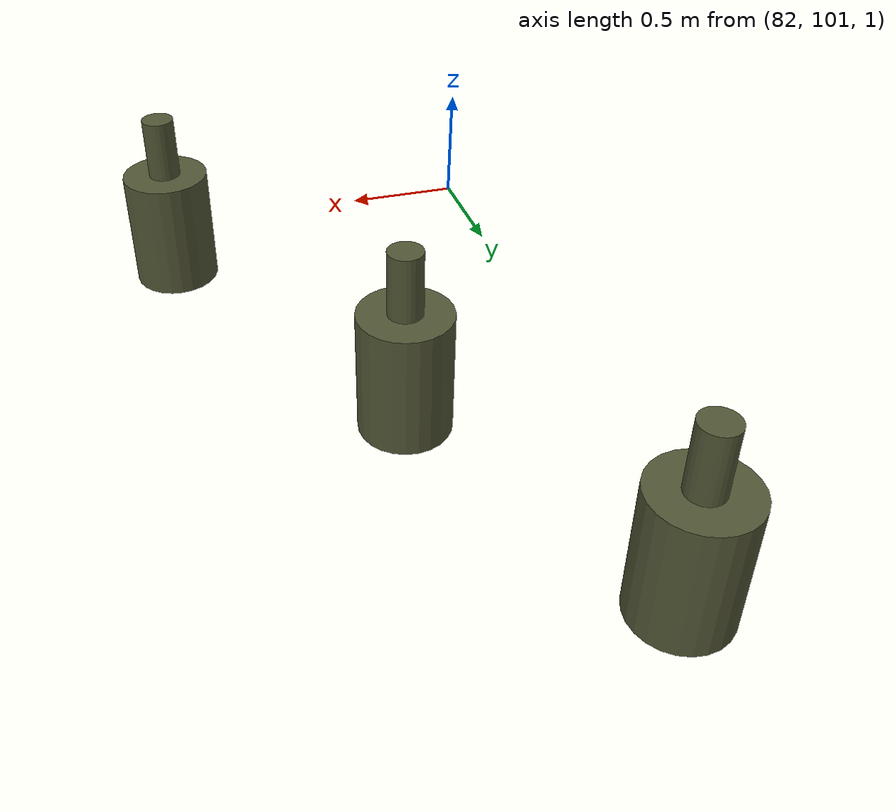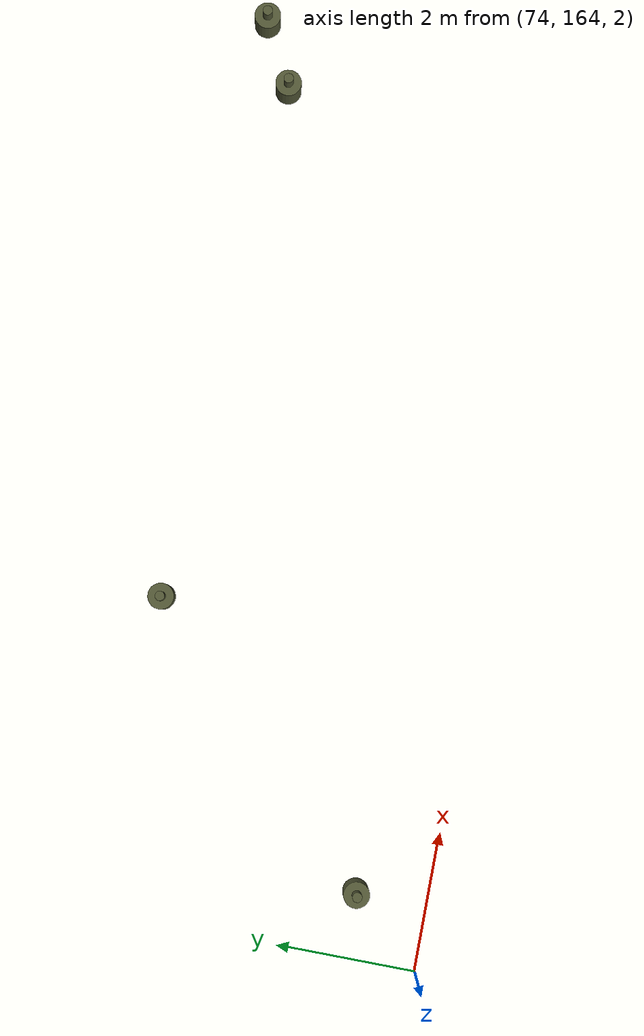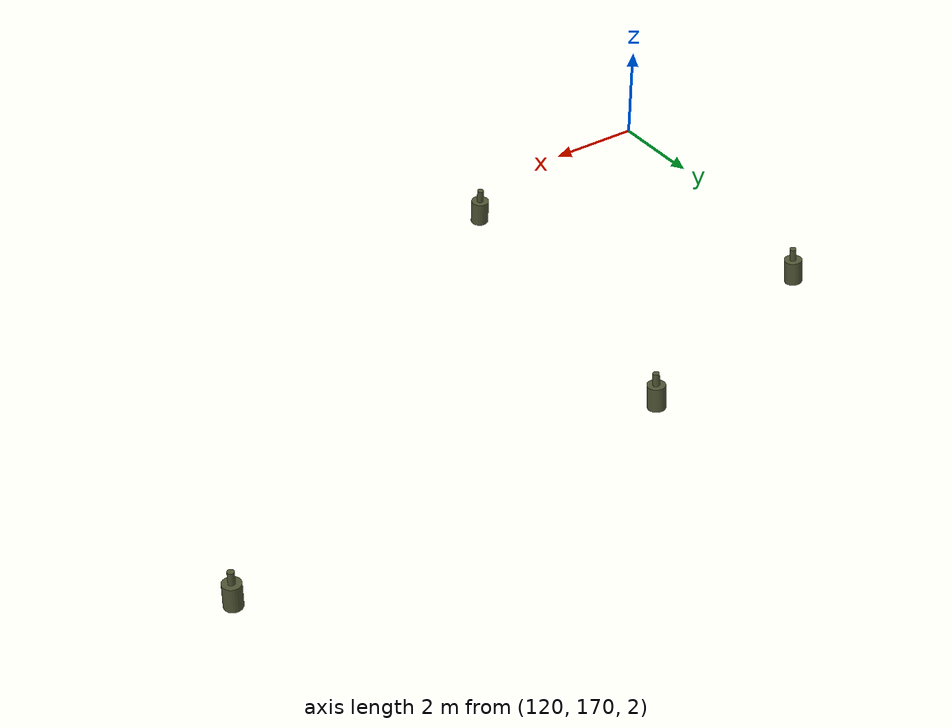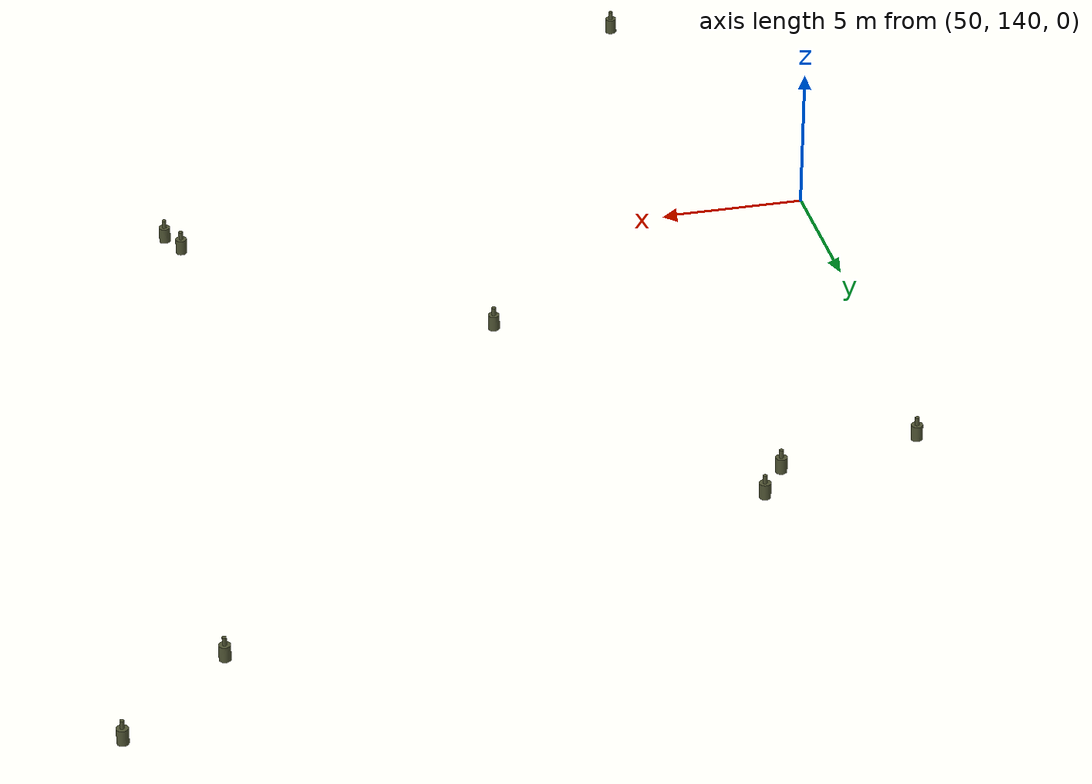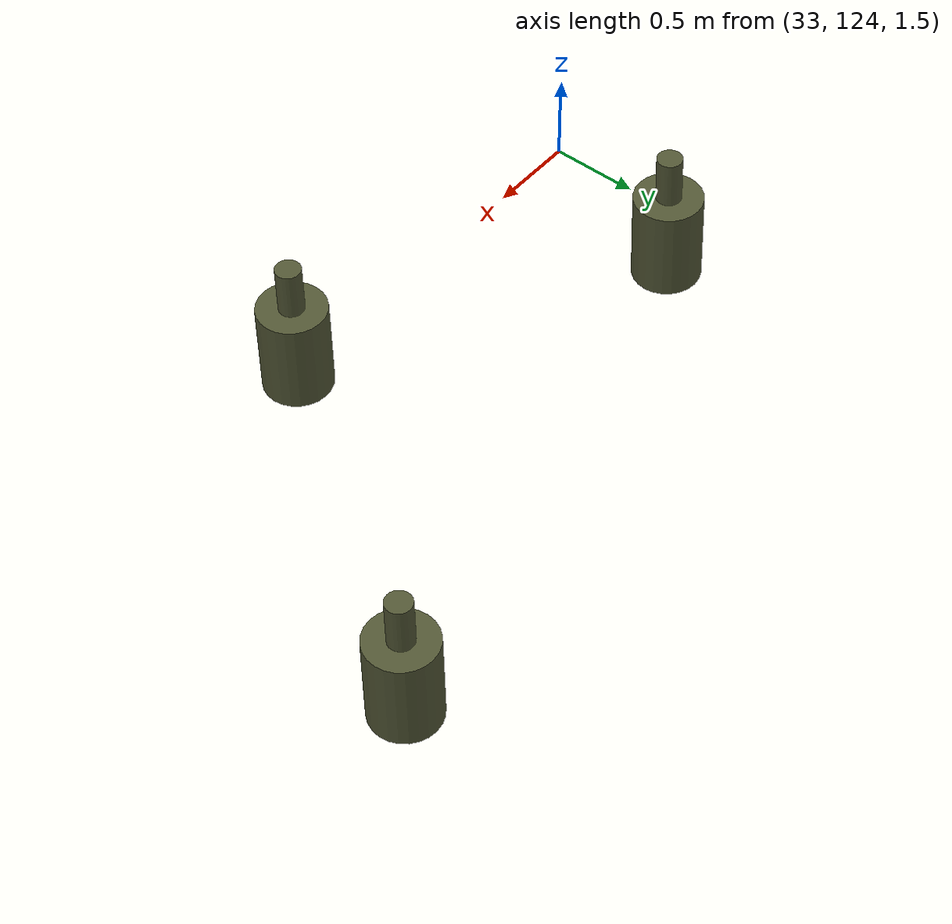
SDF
<sdf version="1.7">
 <world name="default">
  <light name="sun" type="directional">
   <pose>0 0 10 0 -0 0</pose>
   <diffuse>0.8 0.8 0.8 1</diffuse>
   <specular>0.2 0.2 0.2 1</specular>
   <attenuation>
    <range>1000</range>
    <constant>0.9</constant>
    <linear>0.01</linear>
    <quadratic>0.001</quadratic>
   </attenuation>
   <direction>-0.5 0.1 -0.9</direction>
   <spot><inner_angle>0</inner_angle><outer_angle>0</outer_angle><falloff>0</falloff></spot>
  </light>
  <gravity>0 0 -9.8</gravity>
  <magnetic_field>6e-06 2.3e-05 -4.2e-05</magnetic_field>
  <atmosphere type="adiabatic"/>
  <physics type="ode">
   <max_step_size>0.001</max_step_size>
   <real_time_factor>1</real_time_factor>
   <real_time_update_rate>1000</real_time_update_rate>
  </physics>
  <scene><ambient>0.4 0.4 0.4 1</ambient><background>0.7 0.7 0.7 1</background><shadows>0</shadows></scene>
  <spherical_coordinates>
   <surface_model>EARTH_WGS84</surface_model>
   <latitude_deg>46.339159</latitude_deg>
   <longitude_deg>3.433923</longitude_deg>
   <elevation>279.18</elevation>
   <heading_deg>180</heading_deg>
  </spherical_coordinates>
  <model name="obstacle_iso18497">
   <pose>142.732 83.0975 -0.295742 0.011009 0.021463 0.000145</pose>
   <static>1</static>
   <link name="link">
    <visual name="body">
     <pose>0 0 0.265 0 -0 0</pose>
     <geometry><cylinder><radius>0.19</radius><length>0.53</length></cylinder></geometry>
     <material><ambient>0.322 0.341 0.208 1</ambient><diffuse>0.322 0.341 0.208 1</diffuse></material>
    </visual>
    <visual name="head">
     <pose>0 0 0.665 0 -0 0</pose>
     <geometry><cylinder><radius>0.07</radius><length>0.27</length></cylinder></geometry>
     <material><ambient>0.322 0.341 0.208 1</ambient><diffuse>0.322 0.341 0.208 1</diffuse></material>
    </visual>
    <collision name="body_col">
     <pose>0 0 0.265 0 -0 0</pose>
     <geometry><cylinder><radius>0.19</radius><length>0.53</length></cylinder></geometry>
     <surface><contact><collide_without_contact>0</collide_without_contact></contact></surface>
    </collision>
    <collision name="head_col">
     <pose>0 0 0.665 0 -0 0</pose>
     <geometry><cylinder><radius>0.07</radius><length>0.27</length></cylinder></geometry>
     <surface><contact><collide_without_contact>0</collide_without_contact></contact></surface>
    </collision>
    <inertial>
     <mass>40</mass>
     <inertia><ixx>1</ixx><ixy>0</ixy><ixz>0</ixz><iyy>1</iyy><iyz>0</iyz><izz>1</izz></inertia>
    </inertial>
   </link>
  </model>
  <model name="obstacle_iso18497_clone_clone">
   <pose>125.971 74.0657 -0.002322 0.001528 0.043881 0.001737</pose>
   <static>1</static>
   <link name="link">
    <visual name="body">
     <pose>0 0 0.265 0 -0 0</pose>
     <geometry><cylinder><radius>0.19</radius><length>0.53</length></cylinder></geometry>
     <material><ambient>0.322 0.341 0.208 1</ambient><diffuse>0.322 0.341 0.208 1</diffuse></material>
    </visual>
    <visual name="head">
     <pose>0 0 0.665 0 -0 0</pose>
     <geometry><cylinder><radius>0.07</radius><length>0.27</length></cylinder></geometry>
     <material><ambient>0.322 0.341 0.208 1</ambient><diffuse>0.322 0.341 0.208 1</diffuse></material>
    </visual>
    <collision name="body_col">
     <pose>0 0 0.265 0 -0 0</pose>
     <geometry><cylinder><radius>0.19</radius><length>0.53</length></cylinder></geometry>
     <surface><contact><collide_without_contact>0</collide_without_contact></contact></surface>
    </collision>
    <collision name="head_col">
     <pose>0 0 0.665 0 -0 0</pose>
     <geometry><cylinder><radius>0.07</radius><length>0.27</length></cylinder></geometry>
     <surface><contact><collide_without_contact>0</collide_without_contact></contact></surface>
    </collision>
    <inertial>
     <mass>40</mass>
     <inertia><ixx>1</ixx><ixy>0</ixy><ixz>0</ixz><iyy>1</iyy><iyz>0</iyz><izz>1</izz></inertia>
    </inertial>
   </link>
  </model>
  <model name="obstacle_iso18497_clone_clone_0">
   <pose>115.286 96.2675 0.237765 0.012519 0.014392 6.7e-05</pose>
   <static>1</static>
   <link name="link">
    <visual name="body">
     <pose>0 0 0.265 0 -0 0</pose>
     <geometry><cylinder><radius>0.19</radius><length>0.53</length></cylinder></geometry>
     <material><ambient>0.322 0.341 0.208 1</ambient><diffuse>0.322 0.341 0.208 1</diffuse></material>
    </visual>
    <visual name="head">
     <pose>0 0 0.665 0 -0 0</pose>
     <geometry><cylinder><radius>0.07</radius><length>0.27</length></cylinder></geometry>
     <material><ambient>0.322 0.341 0.208 1</ambient><diffuse>0.322 0.341 0.208 1</diffuse></material>
    </visual>
    <collision name="body_col">
     <pose>0 0 0.265 0 -0 0</pose>
     <geometry><cylinder><radius>0.19</radius><length>0.53</length></cylinder></geometry>
     <surface><contact><collide_without_contact>0</collide_without_contact></contact></surface>
    </collision>
    <collision name="head_col">
     <pose>0 0 0.665 0 -0 0</pose>
     <geometry><cylinder><radius>0.07</radius><length>0.27</length></cylinder></geometry>
     <surface><contact><collide_without_contact>0</collide_without_contact></contact></surface>
    </collision>
    <inertial>
     <mass>40</mass>
     <inertia><ixx>1</ixx><ixy>0</ixy><ixz>0</ixz><iyy>1</iyy><iyz>0</iyz><izz>1</izz></inertia>
    </inertial>
   </link>
  </model>
  <model name="obstacle_iso18497_clone_clone_0_clone">
   <pose>111.009 99.3502 0.400379 0.012475 0.014392 9.5e-05</pose>
   <static>1</static>
   <link name="link">
    <visual name="body">
     <pose>0 0 0.265 0 -0 0</pose>
     <geometry><cylinder><radius>0.19</radius><length>0.53</length></cylinder></geometry>
     <material><ambient>0.322 0.341 0.208 1</ambient><diffuse>0.322 0.341 0.208 1</diffuse></material>
    </visual>
    <visual name="head">
     <pose>0 0 0.665 0 -0 0</pose>
     <geometry><cylinder><radius>0.07</radius><length>0.27</length></cylinder></geometry>
     <material><ambient>0.322 0.341 0.208 1</ambient><diffuse>0.322 0.341 0.208 1</diffuse></material>
    </visual>
    <collision name="body_col">
     <pose>0 0 0.265 0 -0 0</pose>
     <geometry><cylinder><radius>0.19</radius><length>0.53</length></cylinder></geometry>
     <surface><contact><collide_without_contact>0</collide_without_contact></contact></surface>
    </collision>
    <collision name="head_col">
     <pose>0 0 0.665 0 -0 0</pose>
     <geometry><cylinder><radius>0.07</radius><length>0.27</length></cylinder></geometry>
     <surface><contact><collide_without_contact>0</collide_without_contact></contact></surface>
    </collision>
    <inertial>
     <mass>40</mass>
     <inertia><ixx>1</ixx><ixy>0</ixy><ixz>0</ixz><iyy>1</iyy><iyz>0</iyz><izz>1</izz></inertia>
    </inertial>
   </link>
  </model>
  <model name="obstacle_iso18497_clone_clone_clone">
   <pose>115.411 72.8431 0.004084 0.012492 0.014394 0.000324</pose>
   <static>1</static>
   <link name="link">
    <visual name="body">
     <pose>0 0 0.265 0 -0 0</pose>
     <geometry><cylinder><radius>0.19</radius><length>0.53</length></cylinder></geometry>
     <material><ambient>0.322 0.341 0.208 1</ambient><diffuse>0.322 0.341 0.208 1</diffuse></material>
    </visual>
    <visual name="head">
     <pose>0 0 0.665 0 -0 0</pose>
     <geometry><cylinder><radius>0.07</radius><length>0.27</length></cylinder></geometry>
     <material><ambient>0.322 0.341 0.208 1</ambient><diffuse>0.322 0.341 0.208 1</diffuse></material>
    </visual>
    <collision name="body_col">
     <pose>0 0 0.265 0 -0 0</pose>
     <geometry><cylinder><radius>0.19</radius><length>0.53</length></cylinder></geometry>
     <surface><contact><collide_without_contact>0</collide_without_contact></contact></surface>
    </collision>
    <collision name="head_col">
     <pose>0 0 0.665 0 -0 0</pose>
     <geometry><cylinder><radius>0.07</radius><length>0.27</length></cylinder></geometry>
     <surface><contact><collide_without_contact>0</collide_without_contact></contact></surface>
    </collision>
    <inertial>
     <mass>40</mass>
     <inertia><ixx>1</ixx><ixy>0</ixy><ixz>0</ixz><iyy>1</iyy><iyz>0</iyz><izz>1</izz></inertia>
    </inertial>
   </link>
  </model>
  <audio><device>default</device></audio>
  <model name="obstacle_iso18497_1">
   <pose>94.2655 81.9016 0.445781 0.01251 0.014408 9.3e-05</pose>
   <static>1</static>
   <link name="link">
    <visual name="body">
     <pose>0 0 0.265 0 -0 0</pose>
     <geometry><cylinder><radius>0.19</radius><length>0.53</length></cylinder></geometry>
     <material><ambient>0.322 0.341 0.208 1</ambient><diffuse>0.322 0.341 0.208 1</diffuse></material>
    </visual>
    <visual name="head">
     <pose>0 0 0.665 0 -0 0</pose>
     <geometry><cylinder><radius>0.07</radius><length>0.27</length></cylinder></geometry>
     <material><ambient>0.322 0.341 0.208 1</ambient><diffuse>0.322 0.341 0.208 1</diffuse></material>
    </visual>
    <collision name="body_col">
     <pose>0 0 0.265 0 -0 0</pose>
     <geometry><cylinder><radius>0.19</radius><length>0.53</length></cylinder></geometry>
     <surface><contact><collide_without_contact>0</collide_without_contact></contact></surface>
    </collision>
    <collision name="head_col">
     <pose>0 0 0.665 0 -0 0</pose>
     <geometry><cylinder><radius>0.07</radius><length>0.27</length></cylinder></geometry>
     <surface><contact><collide_without_contact>0</collide_without_contact></contact></surface>
    </collision>
    <inertial>
     <mass>40</mass>
     <inertia><ixx>1</ixx><ixy>0</ixy><ixz>0</ixz><iyy>1</iyy><iyz>0</iyz><izz>1</izz></inertia>
    </inertial>
   </link>
  </model>
  <model name="obstacle_iso18497_2">
   <pose>87.3139 92.0017 0.642533 0.012479 0.014374 9.2e-05</pose>
   <static>1</static>
   <link name="link">
    <visual name="body">
     <pose>0 0 0.265 0 -0 0</pose>
     <geometry><cylinder><radius>0.19</radius><length>0.53</length></cylinder></geometry>
     <material><ambient>0.322 0.341 0.208 1</ambient><diffuse>0.322 0.341 0.208 1</diffuse></material>
    </visual>
    <visual name="head">
     <pose>0 0 0.665 0 -0 0</pose>
     <geometry><cylinder><radius>0.07</radius><length>0.27</length></cylinder></geometry>
     <material><ambient>0.322 0.341 0.208 1</ambient><diffuse>0.322 0.341 0.208 1</diffuse></material>
    </visual>
    <collision name="body_col">
     <pose>0 0 0.265 0 -0 0</pose>
     <geometry><cylinder><radius>0.19</radius><length>0.53</length></cylinder></geometry>
     <surface><contact><collide_without_contact>0</collide_without_contact></contact></surface>
    </collision>
    <collision name="head_col">
     <pose>0 0 0.665 0 -0 0</pose>
     <geometry><cylinder><radius>0.07</radius><length>0.27</length></cylinder></geometry>
     <surface><contact><collide_without_contact>0</collide_without_contact></contact></surface>
    </collision>
    <inertial>
     <mass>40</mass>
     <inertia><ixx>1</ixx><ixy>0</ixy><ixz>0</ixz><iyy>1</iyy><iyz>0</iyz><izz>1</izz></inertia>
    </inertial>
   </link>
  </model>
  <model name="obstacle_iso18497_2_clone">
   <pose>88.1139 92.4652 0.637066 0.01248 0.014371 9.2e-05</pose>
   <static>1</static>
   <link name="link">
    <visual name="body">
     <pose>0 0 0.265 0 -0 0</pose>
     <geometry><cylinder><radius>0.19</radius><length>0.53</length></cylinder></geometry>
     <material><ambient>0.322 0.341 0.208 1</ambient><diffuse>0.322 0.341 0.208 1</diffuse></material>
    </visual>
    <visual name="head">
     <pose>0 0 0.665 0 -0 0</pose>
     <geometry><cylinder><radius>0.07</radius><length>0.27</length></cylinder></geometry>
     <material><ambient>0.322 0.341 0.208 1</ambient><diffuse>0.322 0.341 0.208 1</diffuse></material>
    </visual>
    <collision name="body_col">
     <pose>0 0 0.265 0 -0 0</pose>
     <geometry><cylinder><radius>0.19</radius><length>0.53</length></cylinder></geometry>
     <surface><contact><collide_without_contact>0</collide_without_contact></contact></surface>
    </collision>
    <collision name="head_col">
     <pose>0 0 0.665 0 -0 0</pose>
     <geometry><cylinder><radius>0.07</radius><length>0.27</length></cylinder></geometry>
     <surface><contact><collide_without_contact>0</collide_without_contact></contact></surface>
    </collision>
    <inertial>
     <mass>40</mass>
     <inertia><ixx>1</ixx><ixy>0</ixy><ixz>0</ixz><iyy>1</iyy><iyz>0</iyz><izz>1</izz></inertia>
    </inertial>
   </link>
  </model>
  <model name="obstacle_iso18497_3">
   <pose>83.4197 101.133 0.811121 0.007073 0.010742 4.4e-05</pose>
   <static>1</static>
   <link name="link">
    <visual name="body">
     <pose>0 0 0.265 0 -0 0</pose>
     <geometry><cylinder><radius>0.19</radius><length>0.53</length></cylinder></geometry>
     <material><ambient>0.322 0.341 0.208 1</ambient><diffuse>0.322 0.341 0.208 1</diffuse></material>
    </visual>
    <visual name="head">
     <pose>0 0 0.665 0 -0 0</pose>
     <geometry><cylinder><radius>0.07</radius><length>0.27</length></cylinder></geometry>
     <material><ambient>0.322 0.341 0.208 1</ambient><diffuse>0.322 0.341 0.208 1</diffuse></material>
    </visual>
    <collision name="body_col">
     <pose>0 0 0.265 0 -0 0</pose>
     <geometry><cylinder><radius>0.19</radius><length>0.53</length></cylinder></geometry>
     <surface><contact><collide_without_contact>0</collide_without_contact></contact></surface>
    </collision>
    <collision name="head_col">
     <pose>0 0 0.665 0 -0 0</pose>
     <geometry><cylinder><radius>0.07</radius><length>0.27</length></cylinder></geometry>
     <surface><contact><collide_without_contact>0</collide_without_contact></contact></surface>
    </collision>
    <inertial>
     <mass>40</mass>
     <inertia><ixx>1</ixx><ixy>0</ixy><ixz>0</ixz><iyy>1</iyy><iyz>0</iyz><izz>1</izz></inertia>
    </inertial>
   </link>
  </model>
  <model name="obstacle_iso18497_2_clone_0">
   <pose>82.6766 102.514 0.823252 0.007048 0.010754 7e-05</pose>
   <static>1</static>
   <link name="link">
    <visual name="body">
     <pose>0 0 0.265 0 -0 0</pose>
     <geometry><cylinder><radius>0.19</radius><length>0.53</length></cylinder></geometry>
     <material><ambient>0.322 0.341 0.208 1</ambient><diffuse>0.322 0.341 0.208 1</diffuse></material>
    </visual>
    <visual name="head">
     <pose>0 0 0.665 0 -0 0</pose>
     <geometry><cylinder><radius>0.07</radius><length>0.27</length></cylinder></geometry>
     <material><ambient>0.322 0.341 0.208 1</ambient><diffuse>0.322 0.341 0.208 1</diffuse></material>
    </visual>
    <collision name="body_col">
     <pose>0 0 0.265 0 -0 0</pose>
     <geometry><cylinder><radius>0.19</radius><length>0.53</length></cylinder></geometry>
     <surface><contact><collide_without_contact>0</collide_without_contact></contact></surface>
    </collision>
    <collision name="head_col">
     <pose>0 0 0.665 0 -0 0</pose>
     <geometry><cylinder><radius>0.07</radius><length>0.27</length></cylinder></geometry>
     <surface><contact><collide_without_contact>0</collide_without_contact></contact></surface>
    </collision>
    <inertial>
     <mass>40</mass>
     <inertia><ixx>1</ixx><ixy>0</ixy><ixz>0</ixz><iyy>1</iyy><iyz>0</iyz><izz>1</izz></inertia>
    </inertial>
   </link>
  </model>
  <model name="obstacle_iso18497_2_clone_1">
   <pose>82.0827 103.658 0.836668 0.007076 0.01076 8.7e-05</pose>
   <static>1</static>
   <link name="link">
    <visual name="body">
     <pose>0 0 0.265 0 -0 0</pose>
     <geometry><cylinder><radius>0.19</radius><length>0.53</length></cylinder></geometry>
     <material><ambient>0.322 0.341 0.208 1</ambient><diffuse>0.322 0.341 0.208 1</diffuse></material>
    </visual>
    <visual name="head">
     <pose>0 0 0.665 0 -0 0</pose>
     <geometry><cylinder><radius>0.07</radius><length>0.27</length></cylinder></geometry>
     <material><ambient>0.322 0.341 0.208 1</ambient><diffuse>0.322 0.341 0.208 1</diffuse></material>
    </visual>
    <collision name="body_col">
     <pose>0 0 0.265 0 -0 0</pose>
     <geometry><cylinder><radius>0.19</radius><length>0.53</length></cylinder></geometry>
     <surface><contact><collide_without_contact>0</collide_without_contact></contact></surface>
    </collision>
    <collision name="head_col">
     <pose>0 0 0.665 0 -0 0</pose>
     <geometry><cylinder><radius>0.07</radius><length>0.27</length></cylinder></geometry>
     <surface><contact><collide_without_contact>0</collide_without_contact></contact></surface>
    </collision>
    <inertial>
     <mass>40</mass>
     <inertia><ixx>1</ixx><ixy>0</ixy><ixz>0</ixz><iyy>1</iyy><iyz>0</iyz><izz>1</izz></inertia>
    </inertial>
   </link>
  </model>
  <model name="obstacle_iso18497_3_clone">
   <pose>77.5652 117.89 0.955867 0.007067 0.010763 3.3e-05</pose>
   <static>1</static>
   <link name="link">
    <visual name="body">
     <pose>0 0 0.265 0 -0 0</pose>
     <geometry><cylinder><radius>0.19</radius><length>0.53</length></cylinder></geometry>
     <material><ambient>0.322 0.341 0.208 1</ambient><diffuse>0.322 0.341 0.208 1</diffuse></material>
    </visual>
    <visual name="head">
     <pose>0 0 0.665 0 -0 0</pose>
     <geometry><cylinder><radius>0.07</radius><length>0.27</length></cylinder></geometry>
     <material><ambient>0.322 0.341 0.208 1</ambient><diffuse>0.322 0.341 0.208 1</diffuse></material>
    </visual>
    <collision name="body_col">
     <pose>0 0 0.265 0 -0 0</pose>
     <geometry><cylinder><radius>0.19</radius><length>0.53</length></cylinder></geometry>
     <surface><contact><collide_without_contact>0</collide_without_contact></contact></surface>
    </collision>
    <collision name="head_col">
     <pose>0 0 0.665 0 -0 0</pose>
     <geometry><cylinder><radius>0.07</radius><length>0.27</length></cylinder></geometry>
     <surface><contact><collide_without_contact>0</collide_without_contact></contact></surface>
    </collision>
    <inertial>
     <mass>40</mass>
     <inertia><ixx>1</ixx><ixy>0</ixy><ixz>0</ixz><iyy>1</iyy><iyz>0</iyz><izz>1</izz></inertia>
    </inertial>
   </link>
  </model>
  <model name="obstacle_iso18497_4">
   <pose>62.8816 148.198 1.40466 0.011558 0.007562 2.6e-05</pose>
   <static>1</static>
   <link name="link">
    <visual name="body">
     <pose>0 0 0.265 0 -0 0</pose>
     <geometry><cylinder><radius>0.19</radius><length>0.53</length></cylinder></geometry>
     <material><ambient>0.322 0.341 0.208 1</ambient><diffuse>0.322 0.341 0.208 1</diffuse></material>
    </visual>
    <visual name="head">
     <pose>0 0 0.665 0 -0 0</pose>
     <geometry><cylinder><radius>0.07</radius><length>0.27</length></cylinder></geometry>
     <material><ambient>0.322 0.341 0.208 1</ambient><diffuse>0.322 0.341 0.208 1</diffuse></material>
    </visual>
    <collision name="body_col">
     <pose>0 0 0.265 0 -0 0</pose>
     <geometry><cylinder><radius>0.19</radius><length>0.53</length></cylinder></geometry>
     <surface><contact><collide_without_contact>0</collide_without_contact></contact></surface>
    </collision>
    <collision name="head_col">
     <pose>0 0 0.665 0 -0 0</pose>
     <geometry><cylinder><radius>0.07</radius><length>0.27</length></cylinder></geometry>
     <surface><contact><collide_without_contact>0</collide_without_contact></contact></surface>
    </collision>
    <inertial>
     <mass>40</mass>
     <inertia><ixx>1</ixx><ixy>0</ixy><ixz>0</ixz><iyy>1</iyy><iyz>0</iyz><izz>1</izz></inertia>
    </inertial>
   </link>
  </model>
  <model name="obstacle_iso18497_5">
   <pose>51.2541 158.084 1.58835 0.011542 0.007546 3.8e-05</pose>
   <static>1</static>
   <link name="link">
    <visual name="body">
     <pose>0 0 0.265 0 -0 0</pose>
     <geometry><cylinder><radius>0.19</radius><length>0.53</length></cylinder></geometry>
     <material><ambient>0.322 0.341 0.208 1</ambient><diffuse>0.322 0.341 0.208 1</diffuse></material>
    </visual>
    <visual name="head">
     <pose>0 0 0.665 0 -0 0</pose>
     <geometry><cylinder><radius>0.07</radius><length>0.27</length></cylinder></geometry>
     <material><ambient>0.322 0.341 0.208 1</ambient><diffuse>0.322 0.341 0.208 1</diffuse></material>
    </visual>
    <collision name="body_col">
     <pose>0 0 0.265 0 -0 0</pose>
     <geometry><cylinder><radius>0.19</radius><length>0.53</length></cylinder></geometry>
     <surface><contact><collide_without_contact>0</collide_without_contact></contact></surface>
    </collision>
    <collision name="head_col">
     <pose>0 0 0.665 0 -0 0</pose>
     <geometry><cylinder><radius>0.07</radius><length>0.27</length></cylinder></geometry>
     <surface><contact><collide_without_contact>0</collide_without_contact></contact></surface>
    </collision>
    <inertial>
     <mass>40</mass>
     <inertia><ixx>1</ixx><ixy>0</ixy><ixz>0</ixz><iyy>1</iyy><iyz>0</iyz><izz>1</izz></inertia>
    </inertial>
   </link>
  </model>
  <model name="obstacle_iso18497_5_clone">
   <pose>55.9562 158.882 1.53271 0.011532 0.007535 3.8e-05</pose>
   <static>1</static>
   <link name="link">
    <visual name="body">
     <pose>0 0 0.265 0 -0 0</pose>
     <geometry><cylinder><radius>0.19</radius><length>0.53</length></cylinder></geometry>
     <material><ambient>0.322 0.341 0.208 1</ambient><diffuse>0.322 0.341 0.208 1</diffuse></material>
    </visual>
    <visual name="head">
     <pose>0 0 0.665 0 -0 0</pose>
     <geometry><cylinder><radius>0.07</radius><length>0.27</length></cylinder></geometry>
     <material><ambient>0.322 0.341 0.208 1</ambient><diffuse>0.322 0.341 0.208 1</diffuse></material>
    </visual>
    <collision name="body_col">
     <pose>0 0 0.265 0 -0 0</pose>
     <geometry><cylinder><radius>0.19</radius><length>0.53</length></cylinder></geometry>
     <surface><contact><collide_without_contact>0</collide_without_contact></contact></surface>
    </collision>
    <collision name="head_col">
     <pose>0 0 0.665 0 -0 0</pose>
     <geometry><cylinder><radius>0.07</radius><length>0.27</length></cylinder></geometry>
     <surface><contact><collide_without_contact>0</collide_without_contact></contact></surface>
    </collision>
    <inertial>
     <mass>40</mass>
     <inertia><ixx>1</ixx><ixy>0</ixy><ixz>0</ixz><iyy>1</iyy><iyz>0</iyz><izz>1</izz></inertia>
    </inertial>
   </link>
  </model>
  <model name="obstacle_iso18497_5_clone_0">
   <pose>56.8718 160.284 1.59703 0.011559 0.007559 3.9e-05</pose>
   <static>1</static>
   <link name="link">
    <visual name="body">
     <pose>0 0 0.265 0 -0 0</pose>
     <geometry><cylinder><radius>0.19</radius><length>0.53</length></cylinder></geometry>
     <material><ambient>0.322 0.341 0.208 1</ambient><diffuse>0.322 0.341 0.208 1</diffuse></material>
    </visual>
    <visual name="head">
     <pose>0 0 0.665 0 -0 0</pose>
     <geometry><cylinder><radius>0.07</radius><length>0.27</length></cylinder></geometry>
     <material><ambient>0.322 0.341 0.208 1</ambient><diffuse>0.322 0.341 0.208 1</diffuse></material>
    </visual>
    <collision name="body_col">
     <pose>0 0 0.265 0 -0 0</pose>
     <geometry><cylinder><radius>0.19</radius><length>0.53</length></cylinder></geometry>
     <surface><contact><collide_without_contact>0</collide_without_contact></contact></surface>
    </collision>
    <collision name="head_col">
     <pose>0 0 0.665 0 -0 0</pose>
     <geometry><cylinder><radius>0.07</radius><length>0.27</length></cylinder></geometry>
     <surface><contact><collide_without_contact>0</collide_without_contact></contact></surface>
    </collision>
    <inertial>
     <mass>40</mass>
     <inertia><ixx>1</ixx><ixy>0</ixy><ixz>0</ixz><iyy>1</iyy><iyz>0</iyz><izz>1</izz></inertia>
    </inertial>
   </link>
  </model>
  <model name="obstacle_iso18497_5_clone_1">
   <pose>74.9012 165.01 1.44093 0.011517 0.009393 7e-05</pose>
   <static>1</static>
   <link name="link">
    <visual name="body">
     <pose>0 0 0.265 0 -0 0</pose>
     <geometry><cylinder><radius>0.19</radius><length>0.53</length></cylinder></geometry>
     <material><ambient>0.322 0.341 0.208 1</ambient><diffuse>0.322 0.341 0.208 1</diffuse></material>
    </visual>
    <visual name="head">
     <pose>0 0 0.665 0 -0 0</pose>
     <geometry><cylinder><radius>0.07</radius><length>0.27</length></cylinder></geometry>
     <material><ambient>0.322 0.341 0.208 1</ambient><diffuse>0.322 0.341 0.208 1</diffuse></material>
    </visual>
    <collision name="body_col">
     <pose>0 0 0.265 0 -0 0</pose>
     <geometry><cylinder><radius>0.19</radius><length>0.53</length></cylinder></geometry>
     <surface><contact><collide_without_contact>0</collide_without_contact></contact></surface>
    </collision>
    <collision name="head_col">
     <pose>0 0 0.665 0 -0 0</pose>
     <geometry><cylinder><radius>0.07</radius><length>0.27</length></cylinder></geometry>
     <surface><contact><collide_without_contact>0</collide_without_contact></contact></surface>
    </collision>
    <inertial>
     <mass>40</mass>
     <inertia><ixx>1</ixx><ixy>0</ixy><ixz>0</ixz><iyy>1</iyy><iyz>0</iyz><izz>1</izz></inertia>
    </inertial>
   </link>
  </model>
  <model name="obstacle_iso18497_5_clone_1_clone">
   <pose>78.5617 168.566 1.47169 0.011505 0.009393 7.3e-05</pose>
   <static>1</static>
   <link name="link">
    <visual name="body">
     <pose>0 0 0.265 0 -0 0</pose>
     <geometry><cylinder><radius>0.19</radius><length>0.53</length></cylinder></geometry>
     <material><ambient>0.322 0.341 0.208 1</ambient><diffuse>0.322 0.341 0.208 1</diffuse></material>
    </visual>
    <visual name="head">
     <pose>0 0 0.665 0 -0 0</pose>
     <geometry><cylinder><radius>0.07</radius><length>0.27</length></cylinder></geometry>
     <material><ambient>0.322 0.341 0.208 1</ambient><diffuse>0.322 0.341 0.208 1</diffuse></material>
    </visual>
    <collision name="body_col">
     <pose>0 0 0.265 0 -0 0</pose>
     <geometry><cylinder><radius>0.19</radius><length>0.53</length></cylinder></geometry>
     <surface><contact><collide_without_contact>0</collide_without_contact></contact></surface>
    </collision>
    <collision name="head_col">
     <pose>0 0 0.665 0 -0 0</pose>
     <geometry><cylinder><radius>0.07</radius><length>0.27</length></cylinder></geometry>
     <surface><contact><collide_without_contact>0</collide_without_contact></contact></surface>
    </collision>
    <inertial>
     <mass>40</mass>
     <inertia><ixx>1</ixx><ixy>0</ixy><ixz>0</ixz><iyy>1</iyy><iyz>0</iyz><izz>1</izz></inertia>
    </inertial>
   </link>
  </model>
  <model name="obstacle_iso18497_5_clone_1_clone_clone">
   <pose>86.2294 168.169 1.39139 0.011506 0.009392 8.3e-05</pose>
   <static>1</static>
   <link name="link">
    <visual name="body">
     <pose>0 0 0.265 0 -0 0</pose>
     <geometry><cylinder><radius>0.19</radius><length>0.53</length></cylinder></geometry>
     <material><ambient>0.322 0.341 0.208 1</ambient><diffuse>0.322 0.341 0.208 1</diffuse></material>
    </visual>
    <visual name="head">
     <pose>0 0 0.665 0 -0 0</pose>
     <geometry><cylinder><radius>0.07</radius><length>0.27</length></cylinder></geometry>
     <material><ambient>0.322 0.341 0.208 1</ambient><diffuse>0.322 0.341 0.208 1</diffuse></material>
    </visual>
    <collision name="body_col">
     <pose>0 0 0.265 0 -0 0</pose>
     <geometry><cylinder><radius>0.19</radius><length>0.53</length></cylinder></geometry>
     <surface><contact><collide_without_contact>0</collide_without_contact></contact></surface>
    </collision>
    <collision name="head_col">
     <pose>0 0 0.665 0 -0 0</pose>
     <geometry><cylinder><radius>0.07</radius><length>0.27</length></cylinder></geometry>
     <surface><contact><collide_without_contact>0</collide_without_contact></contact></surface>
    </collision>
    <inertial>
     <mass>40</mass>
     <inertia><ixx>1</ixx><ixy>0</ixy><ixz>0</ixz><iyy>1</iyy><iyz>0</iyz><izz>1</izz></inertia>
    </inertial>
   </link>
  </model>
  <model name="obstacle_iso18497_5_clone_1_clone_clone_0">
   <pose>87.1462 168.653 1.38702 0.011515 0.009369 0.000103</pose>
   <static>1</static>
   <link name="link">
    <visual name="body">
     <pose>0 0 0.265 0 -0 0</pose>
     <geometry><cylinder><radius>0.19</radius><length>0.53</length></cylinder></geometry>
     <material><ambient>0.322 0.341 0.208 1</ambient><diffuse>0.322 0.341 0.208 1</diffuse></material>
    </visual>
    <visual name="head">
     <pose>0 0 0.665 0 -0 0</pose>
     <geometry><cylinder><radius>0.07</radius><length>0.27</length></cylinder></geometry>
     <material><ambient>0.322 0.341 0.208 1</ambient><diffuse>0.322 0.341 0.208 1</diffuse></material>
    </visual>
    <collision name="body_col">
     <pose>0 0 0.265 0 -0 0</pose>
     <geometry><cylinder><radius>0.19</radius><length>0.53</length></cylinder></geometry>
     <surface><contact><collide_without_contact>0</collide_without_contact></contact></surface>
    </collision>
    <collision name="head_col">
     <pose>0 0 0.665 0 -0 0</pose>
     <geometry><cylinder><radius>0.07</radius><length>0.27</length></cylinder></geometry>
     <surface><contact><collide_without_contact>0</collide_without_contact></contact></surface>
    </collision>
    <inertial>
     <mass>40</mass>
     <inertia><ixx>1</ixx><ixy>0</ixy><ixz>0</ixz><iyy>1</iyy><iyz>0</iyz><izz>1</izz></inertia>
    </inertial>
   </link>
  </model>
  <model name="obstacle_iso18497_6">
   <pose>101.43 182.684 1.41816 0.011522 0.009374 4.3e-05</pose>
   <static>1</static>
   <link name="link">
    <visual name="body">
     <pose>0 0 0.265 0 -0 0</pose>
     <geometry><cylinder><radius>0.19</radius><length>0.53</length></cylinder></geometry>
     <material><ambient>0.322 0.341 0.208 1</ambient><diffuse>0.322 0.341 0.208 1</diffuse></material>
    </visual>
    <visual name="head">
     <pose>0 0 0.665 0 -0 0</pose>
     <geometry><cylinder><radius>0.07</radius><length>0.27</length></cylinder></geometry>
     <material><ambient>0.322 0.341 0.208 1</ambient><diffuse>0.322 0.341 0.208 1</diffuse></material>
    </visual>
    <collision name="body_col">
     <pose>0 0 0.265 0 -0 0</pose>
     <geometry><cylinder><radius>0.19</radius><length>0.53</length></cylinder></geometry>
     <surface><contact><collide_without_contact>0</collide_without_contact></contact></surface>
    </collision>
    <collision name="head_col">
     <pose>0 0 0.665 0 -0 0</pose>
     <geometry><cylinder><radius>0.07</radius><length>0.27</length></cylinder></geometry>
     <surface><contact><collide_without_contact>0</collide_without_contact></contact></surface>
    </collision>
    <inertial>
     <mass>40</mass>
     <inertia><ixx>1</ixx><ixy>0</ixy><ixz>0</ixz><iyy>1</iyy><iyz>0</iyz><izz>1</izz></inertia>
    </inertial>
   </link>
  </model>
  <model name="obstacle_iso18497_7">
   <pose>120.187 175.989 1.32194 0.064825 0.05767 -0.007905</pose>
   <static>1</static>
   <link name="link">
    <visual name="body">
     <pose>0 0 0.265 0 -0 0</pose>
     <geometry><cylinder><radius>0.19</radius><length>0.53</length></cylinder></geometry>
     <material><ambient>0.322 0.341 0.208 1</ambient><diffuse>0.322 0.341 0.208 1</diffuse></material>
    </visual>
    <visual name="head">
     <pose>0 0 0.665 0 -0 0</pose>
     <geometry><cylinder><radius>0.07</radius><length>0.27</length></cylinder></geometry>
     <material><ambient>0.322 0.341 0.208 1</ambient><diffuse>0.322 0.341 0.208 1</diffuse></material>
    </visual>
    <collision name="body_col">
     <pose>0 0 0.265 0 -0 0</pose>
     <geometry><cylinder><radius>0.19</radius><length>0.53</length></cylinder></geometry>
     <surface><contact><collide_without_contact>0</collide_without_contact></contact></surface>
    </collision>
    <collision name="head_col">
     <pose>0 0 0.665 0 -0 0</pose>
     <geometry><cylinder><radius>0.07</radius><length>0.27</length></cylinder></geometry>
     <surface><contact><collide_without_contact>0</collide_without_contact></contact></surface>
    </collision>
    <inertial>
     <mass>40</mass>
     <inertia><ixx>1</ixx><ixy>0</ixy><ixz>0</ixz><iyy>1</iyy><iyz>0</iyz><izz>1</izz></inertia>
    </inertial>
   </link>
  </model>
  <model name="obstacle_iso18497_7_clone">
   <pose>125.279 177.818 1.28404 0.074771 0.022457 0.011293</pose>
   <static>1</static>
   <link name="link">
    <visual name="body">
     <pose>0 0 0.265 0 -0 0</pose>
     <geometry><cylinder><radius>0.19</radius><length>0.53</length></cylinder></geometry>
     <material><ambient>0.322 0.341 0.208 1</ambient><diffuse>0.322 0.341 0.208 1</diffuse></material>
    </visual>
    <visual name="head">
     <pose>0 0 0.665 0 -0 0</pose>
     <geometry><cylinder><radius>0.07</radius><length>0.27</length></cylinder></geometry>
     <material><ambient>0.322 0.341 0.208 1</ambient><diffuse>0.322 0.341 0.208 1</diffuse></material>
    </visual>
    <collision name="body_col">
     <pose>0 0 0.265 0 -0 0</pose>
     <geometry><cylinder><radius>0.19</radius><length>0.53</length></cylinder></geometry>
     <surface><contact><collide_without_contact>0</collide_without_contact></contact></surface>
    </collision>
    <collision name="head_col">
     <pose>0 0 0.665 0 -0 0</pose>
     <geometry><cylinder><radius>0.07</radius><length>0.27</length></cylinder></geometry>
     <surface><contact><collide_without_contact>0</collide_without_contact></contact></surface>
    </collision>
    <inertial>
     <mass>40</mass>
     <inertia><ixx>1</ixx><ixy>0</ixy><ixz>0</ixz><iyy>1</iyy><iyz>0</iyz><izz>1</izz></inertia>
    </inertial>
   </link>
  </model>
  <model name="obstacle_iso18497_7_clone_0">
   <pose>124.31 170.235 1.23896 -0.042126 0.000988 -0.000531</pose>
   <static>1</static>
   <link name="link">
    <visual name="body">
     <pose>0 0 0.265 0 -0 0</pose>
     <geometry><cylinder><radius>0.19</radius><length>0.53</length></cylinder></geometry>
     <material><ambient>0.322 0.341 0.208 1</ambient><diffuse>0.322 0.341 0.208 1</diffuse></material>
    </visual>
    <visual name="head">
     <pose>0 0 0.665 0 -0 0</pose>
     <geometry><cylinder><radius>0.07</radius><length>0.27</length></cylinder></geometry>
     <material><ambient>0.322 0.341 0.208 1</ambient><diffuse>0.322 0.341 0.208 1</diffuse></material>
    </visual>
    <collision name="body_col">
     <pose>0 0 0.265 0 -0 0</pose>
     <geometry><cylinder><radius>0.19</radius><length>0.53</length></cylinder></geometry>
     <surface><contact><collide_without_contact>0</collide_without_contact></contact></surface>
    </collision>
    <collision name="head_col">
     <pose>0 0 0.665 0 -0 0</pose>
     <geometry><cylinder><radius>0.07</radius><length>0.27</length></cylinder></geometry>
     <surface><contact><collide_without_contact>0</collide_without_contact></contact></surface>
    </collision>
    <inertial>
     <mass>40</mass>
     <inertia><ixx>1</ixx><ixy>0</ixy><ixz>0</ixz><iyy>1</iyy><iyz>0</iyz><izz>1</izz></inertia>
    </inertial>
   </link>
  </model>
  <model name="obstacle_iso18497_7_clone_clone">
   <pose>134.872 177.979 1.05338 0.011598 0.009229 0.011817</pose>
   <static>1</static>
   <link name="link">
    <visual name="body">
     <pose>0 0 0.265 0 -0 0</pose>
     <geometry><cylinder><radius>0.19</radius><length>0.53</length></cylinder></geometry>
     <material><ambient>0.322 0.341 0.208 1</ambient><diffuse>0.322 0.341 0.208 1</diffuse></material>
    </visual>
    <visual name="head">
     <pose>0 0 0.665 0 -0 0</pose>
     <geometry><cylinder><radius>0.07</radius><length>0.27</length></cylinder></geometry>
     <material><ambient>0.322 0.341 0.208 1</ambient><diffuse>0.322 0.341 0.208 1</diffuse></material>
    </visual>
    <collision name="body_col">
     <pose>0 0 0.265 0 -0 0</pose>
     <geometry><cylinder><radius>0.19</radius><length>0.53</length></cylinder></geometry>
     <surface><contact><collide_without_contact>0</collide_without_contact></contact></surface>
    </collision>
    <collision name="head_col">
     <pose>0 0 0.665 0 -0 0</pose>
     <geometry><cylinder><radius>0.07</radius><length>0.27</length></cylinder></geometry>
     <surface><contact><collide_without_contact>0</collide_without_contact></contact></surface>
    </collision>
    <inertial>
     <mass>40</mass>
     <inertia><ixx>1</ixx><ixy>0</ixy><ixz>0</ixz><iyy>1</iyy><iyz>0</iyz><izz>1</izz></inertia>
    </inertial>
   </link>
  </model>
  <model name="obstacle_iso18497_8">
   <pose>104.651 154.84 1.01597 0.01271 0.009989 8.2e-05</pose>
   <static>1</static>
   <link name="link">
    <visual name="body">
     <pose>0 0 0.265 0 -0 0</pose>
     <geometry><cylinder><radius>0.19</radius><length>0.53</length></cylinder></geometry>
     <material><ambient>0.322 0.341 0.208 1</ambient><diffuse>0.322 0.341 0.208 1</diffuse></material>
    </visual>
    <visual name="head">
     <pose>0 0 0.665 0 -0 0</pose>
     <geometry><cylinder><radius>0.07</radius><length>0.27</length></cylinder></geometry>
     <material><ambient>0.322 0.341 0.208 1</ambient><diffuse>0.322 0.341 0.208 1</diffuse></material>
    </visual>
    <collision name="body_col">
     <pose>0 0 0.265 0 -0 0</pose>
     <geometry><cylinder><radius>0.19</radius><length>0.53</length></cylinder></geometry>
     <surface><contact><collide_without_contact>0</collide_without_contact></contact></surface>
    </collision>
    <collision name="head_col">
     <pose>0 0 0.665 0 -0 0</pose>
     <geometry><cylinder><radius>0.07</radius><length>0.27</length></cylinder></geometry>
     <surface><contact><collide_without_contact>0</collide_without_contact></contact></surface>
    </collision>
    <inertial>
     <mass>40</mass>
     <inertia><ixx>1</ixx><ixy>0</ixy><ixz>0</ixz><iyy>1</iyy><iyz>0</iyz><izz>1</izz></inertia>
    </inertial>
   </link>
  </model>
  <model name="obstacle_iso18497_8_clone">
   <pose>96.3728 150.093 1.09139 0.012685 0.009982 6.3e-05</pose>
   <static>1</static>
   <link name="link">
    <visual name="body">
     <pose>0 0 0.265 0 -0 0</pose>
     <geometry><cylinder><radius>0.19</radius><length>0.53</length></cylinder></geometry>
     <material><ambient>0.322 0.341 0.208 1</ambient><diffuse>0.322 0.341 0.208 1</diffuse></material>
    </visual>
    <visual name="head">
     <pose>0 0 0.665 0 -0 0</pose>
     <geometry><cylinder><radius>0.07</radius><length>0.27</length></cylinder></geometry>
     <material><ambient>0.322 0.341 0.208 1</ambient><diffuse>0.322 0.341 0.208 1</diffuse></material>
    </visual>
    <collision name="body_col">
     <pose>0 0 0.265 0 -0 0</pose>
     <geometry><cylinder><radius>0.19</radius><length>0.53</length></cylinder></geometry>
     <surface><contact><collide_without_contact>0</collide_without_contact></contact></surface>
    </collision>
    <collision name="head_col">
     <pose>0 0 0.665 0 -0 0</pose>
     <geometry><cylinder><radius>0.07</radius><length>0.27</length></cylinder></geometry>
     <surface><contact><collide_without_contact>0</collide_without_contact></contact></surface>
    </collision>
    <inertial>
     <mass>40</mass>
     <inertia><ixx>1</ixx><ixy>0</ixy><ixz>0</ixz><iyy>1</iyy><iyz>0</iyz><izz>1</izz></inertia>
    </inertial>
   </link>
  </model>
  <model name="obstacle_iso18497_9">
   <pose>72.5051 139.73 1.17006 0.012692 0.009987 6.3e-05</pose>
   <static>1</static>
   <link name="link">
    <visual name="body">
     <pose>0 0 0.265 0 -0 0</pose>
     <geometry><cylinder><radius>0.19</radius><length>0.53</length></cylinder></geometry>
     <material><ambient>0.322 0.341 0.208 1</ambient><diffuse>0.322 0.341 0.208 1</diffuse></material>
    </visual>
    <visual name="head">
     <pose>0 0 0.665 0 -0 0</pose>
     <geometry><cylinder><radius>0.07</radius><length>0.27</length></cylinder></geometry>
     <material><ambient>0.322 0.341 0.208 1</ambient><diffuse>0.322 0.341 0.208 1</diffuse></material>
    </visual>
    <collision name="body_col">
     <pose>0 0 0.265 0 -0 0</pose>
     <geometry><cylinder><radius>0.19</radius><length>0.53</length></cylinder></geometry>
     <surface><contact><collide_without_contact>0</collide_without_contact></contact></surface>
    </collision>
    <collision name="head_col">
     <pose>0 0 0.665 0 -0 0</pose>
     <geometry><cylinder><radius>0.07</radius><length>0.27</length></cylinder></geometry>
     <surface><contact><collide_without_contact>0</collide_without_contact></contact></surface>
    </collision>
    <inertial>
     <mass>40</mass>
     <inertia><ixx>1</ixx><ixy>0</ixy><ixz>0</ixz><iyy>1</iyy><iyz>0</iyz><izz>1</izz></inertia>
    </inertial>
   </link>
  </model>
  <model name="obstacle_iso18497_9_clone">
   <pose>54.075 128.505 1.22315 0.021864 0.012817 0.000121</pose>
   <static>1</static>
   <link name="link">
    <visual name="body">
     <pose>0 0 0.265 0 -0 0</pose>
     <geometry><cylinder><radius>0.19</radius><length>0.53</length></cylinder></geometry>
     <material><ambient>0.322 0.341 0.208 1</ambient><diffuse>0.322 0.341 0.208 1</diffuse></material>
    </visual>
    <visual name="head">
     <pose>0 0 0.665 0 -0 0</pose>
     <geometry><cylinder><radius>0.07</radius><length>0.27</length></cylinder></geometry>
     <material><ambient>0.322 0.341 0.208 1</ambient><diffuse>0.322 0.341 0.208 1</diffuse></material>
    </visual>
    <collision name="body_col">
     <pose>0 0 0.265 0 -0 0</pose>
     <geometry><cylinder><radius>0.19</radius><length>0.53</length></cylinder></geometry>
     <surface><contact><collide_without_contact>0</collide_without_contact></contact></surface>
    </collision>
    <collision name="head_col">
     <pose>0 0 0.665 0 -0 0</pose>
     <geometry><cylinder><radius>0.07</radius><length>0.27</length></cylinder></geometry>
     <surface><contact><collide_without_contact>0</collide_without_contact></contact></surface>
    </collision>
    <inertial>
     <mass>40</mass>
     <inertia><ixx>1</ixx><ixy>0</ixy><ixz>0</ixz><iyy>1</iyy><iyz>0</iyz><izz>1</izz></inertia>
    </inertial>
   </link>
  </model>
  <model name="obstacle_iso18497_9_clone_clone">
   <pose>35.1698 123.97 1.38852 0.021867 0.012818 0.000121</pose>
   <static>1</static>
   <link name="link">
    <visual name="body">
     <pose>0 0 0.265 0 -0 0</pose>
     <geometry><cylinder><radius>0.19</radius><length>0.53</length></cylinder></geometry>
     <material><ambient>0.322 0.341 0.208 1</ambient><diffuse>0.322 0.341 0.208 1</diffuse></material>
    </visual>
    <visual name="head">
     <pose>0 0 0.665 0 -0 0</pose>
     <geometry><cylinder><radius>0.07</radius><length>0.27</length></cylinder></geometry>
     <material><ambient>0.322 0.341 0.208 1</ambient><diffuse>0.322 0.341 0.208 1</diffuse></material>
    </visual>
    <collision name="body_col">
     <pose>0 0 0.265 0 -0 0</pose>
     <geometry><cylinder><radius>0.19</radius><length>0.53</length></cylinder></geometry>
     <surface><contact><collide_without_contact>0</collide_without_contact></contact></surface>
    </collision>
    <collision name="head_col">
     <pose>0 0 0.665 0 -0 0</pose>
     <geometry><cylinder><radius>0.07</radius><length>0.27</length></cylinder></geometry>
     <surface><contact><collide_without_contact>0</collide_without_contact></contact></surface>
    </collision>
    <inertial>
     <mass>40</mass>
     <inertia><ixx>1</ixx><ixy>0</ixy><ixz>0</ixz><iyy>1</iyy><iyz>0</iyz><izz>1</izz></inertia>
    </inertial>
   </link>
  </model>
  <model name="obstacle_iso18497_9_clone_clone_clone">
   <pose>36.4732 125.794 1.40786 0.021872 0.01282 0.000122</pose>
   <static>1</static>
   <link name="link">
    <visual name="body">
     <pose>0 0 0.265 0 -0 0</pose>
     <geometry><cylinder><radius>0.19</radius><length>0.53</length></cylinder></geometry>
     <material><ambient>0.322 0.341 0.208 1</ambient><diffuse>0.322 0.341 0.208 1</diffuse></material>
    </visual>
    <visual name="head">
     <pose>0 0 0.665 0 -0 0</pose>
     <geometry><cylinder><radius>0.07</radius><length>0.27</length></cylinder></geometry>
     <material><ambient>0.322 0.341 0.208 1</ambient><diffuse>0.322 0.341 0.208 1</diffuse></material>
    </visual>
    <collision name="body_col">
     <pose>0 0 0.265 0 -0 0</pose>
     <geometry><cylinder><radius>0.19</radius><length>0.53</length></cylinder></geometry>
     <surface><contact><collide_without_contact>0</collide_without_contact></contact></surface>
    </collision>
    <collision name="head_col">
     <pose>0 0 0.665 0 -0 0</pose>
     <geometry><cylinder><radius>0.07</radius><length>0.27</length></cylinder></geometry>
     <surface><contact><collide_without_contact>0</collide_without_contact></contact></surface>
    </collision>
    <inertial>
     <mass>40</mass>
     <inertia><ixx>1</ixx><ixy>0</ixy><ixz>0</ixz><iyy>1</iyy><iyz>0</iyz><izz>1</izz></inertia>
    </inertial>
   </link>
  </model>
  <model name="obstacle_iso18497_9_clone_clone_clone_0">
   <pose>33.3047 124.97 1.40249 0.021872 0.01282 0.000122</pose>
   <static>1</static>
   <link name="link">
    <visual name="body">
     <pose>0 0 0.265 0 -0 0</pose>
     <geometry><cylinder><radius>0.19</radius><length>0.53</length></cylinder></geometry>
     <material><ambient>0.322 0.341 0.208 1</ambient><diffuse>0.322 0.341 0.208 1</diffuse></material>
    </visual>
    <visual name="head">
     <pose>0 0 0.665 0 -0 0</pose>
     <geometry><cylinder><radius>0.07</radius><length>0.27</length></cylinder></geometry>
     <material><ambient>0.322 0.341 0.208 1</ambient><diffuse>0.322 0.341 0.208 1</diffuse></material>
    </visual>
    <collision name="body_col">
     <pose>0 0 0.265 0 -0 0</pose>
     <geometry><cylinder><radius>0.19</radius><length>0.53</length></cylinder></geometry>
     <surface><contact><collide_without_contact>0</collide_without_contact></contact></surface>
    </collision>
    <collision name="head_col">
     <pose>0 0 0.665 0 -0 0</pose>
     <geometry><cylinder><radius>0.07</radius><length>0.27</length></cylinder></geometry>
     <surface><contact><collide_without_contact>0</collide_without_contact></contact></surface>
    </collision>
    <inertial>
     <mass>40</mass>
     <inertia><ixx>1</ixx><ixy>0</ixy><ixz>0</ixz><iyy>1</iyy><iyz>0</iyz><izz>1</izz></inertia>
    </inertial>
   </link>
  </model>
  <model name="obstacle_iso18497_9_clone_0">
   <pose>72.0843 140.623 1.17006 0.012692 0.009987 6.3e-05</pose>
   <static>1</static>
   <link name="link">
    <visual name="body">
     <pose>0 0 0.265 0 -0 0</pose>
     <geometry><cylinder><radius>0.19</radius><length>0.53</length></cylinder></geometry>
     <material><ambient>0.322 0.341 0.208 1</ambient><diffuse>0.322 0.341 0.208 1</diffuse></material>
    </visual>
    <visual name="head">
     <pose>0 0 0.665 0 -0 0</pose>
     <geometry><cylinder><radius>0.07</radius><length>0.27</length></cylinder></geometry>
     <material><ambient>0.322 0.341 0.208 1</ambient><diffuse>0.322 0.341 0.208 1</diffuse></material>
    </visual>
    <collision name="body_col">
     <pose>0 0 0.265 0 -0 0</pose>
     <geometry><cylinder><radius>0.19</radius><length>0.53</length></cylinder></geometry>
     <surface><contact><collide_without_contact>0</collide_without_contact></contact></surface>
    </collision>
    <collision name="head_col">
     <pose>0 0 0.665 0 -0 0</pose>
     <geometry><cylinder><radius>0.07</radius><length>0.27</length></cylinder></geometry>
     <surface><contact><collide_without_contact>0</collide_without_contact></contact></surface>
    </collision>
    <inertial>
     <mass>40</mass>
     <inertia><ixx>1</ixx><ixy>0</ixy><ixz>0</ixz><iyy>1</iyy><iyz>0</iyz><izz>1</izz></inertia>
    </inertial>
   </link>
  </model>
 </world>
</sdf>
